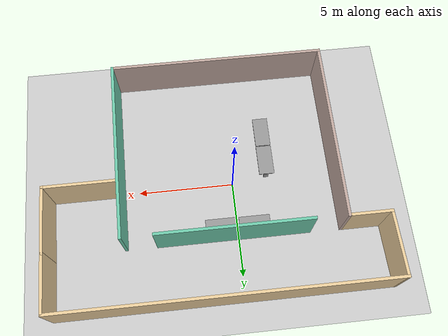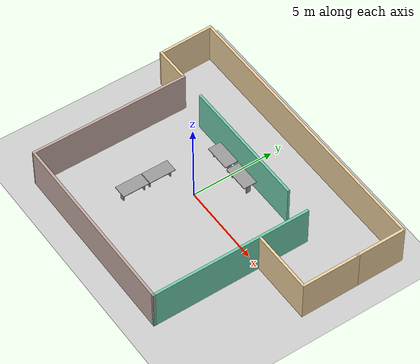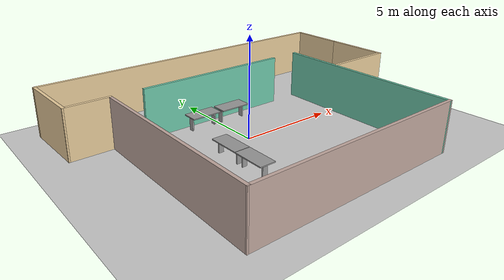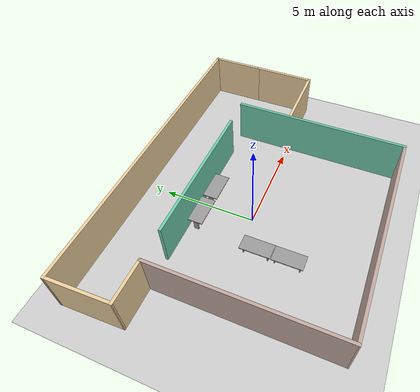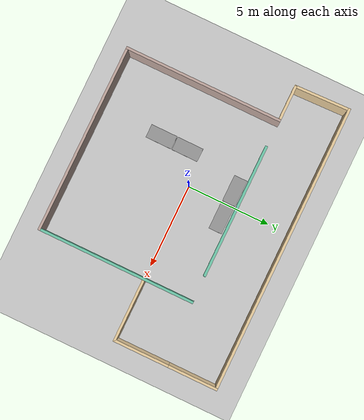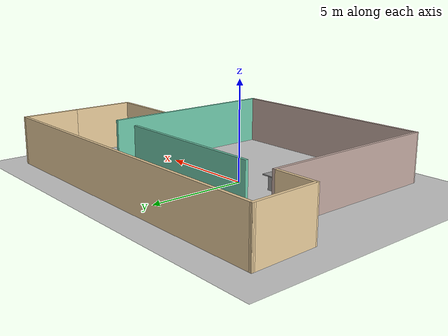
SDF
<sdf version="1.6">
 <world name="default">
  <model name="ground_plane">
   <static>1</static>
   <link name="link">
    <collision name="collision">
     <geometry><plane><normal>0 0 1</normal><size>100 100</size></plane></geometry>
     <surface><friction><ode><mu>100</mu><mu2>50</mu2></ode></friction></surface>
    </collision>
    <visual name="visual">
     <cast_shadows>0</cast_shadows>
     <geometry><plane><normal>0 0 1</normal><size>100 100</size></plane></geometry>
     <material>
      <script><uri>file://media/materials/scripts/gazebo.material</uri><name>Gazebo/Grey</name></script>
     </material>
    </visual>
   </link>
  </model>
  <model name="robot_lab">
   <pose>1.00449 -0.052687 0 0 -0 0</pose>
   <link name="Wall_10">
    <collision name="Wall_10_Collision">
     <geometry><box><size>8 0.15 2.5</size></box></geometry>
     <pose>0 0 1.25 0 -0 0</pose>
    </collision>
    <visual name="Wall_10_Visual">
     <pose>0 0 1.25 0 -0 0</pose>
     <geometry><box><size>8 0.15 2.5</size></box></geometry>
     <material>
      <script><uri>file://media/materials/scripts/gazebo.material</uri><name>Gazebo/Grey</name></script>
      <ambient>0.435294 0.796078 0.67451 1</ambient>
     </material>
    </visual>
    <pose>-0.751583 3.04123 0 0 -0 0</pose>
   </link>
   <link name="Wall_12">
    <collision name="Wall_12_Collision">
     <geometry><box><size>9.5 0.15 2.5</size></box></geometry>
     <pose>0 0 1.25 0 -0 0</pose>
    </collision>
    <visual name="Wall_12_Visual">
     <pose>0 0 1.25 0 -0 0</pose>
     <geometry><box><size>9.5 0.15 2.5</size></box></geometry>
     <material>
      <script><uri>file://media/materials/scripts/gazebo.material</uri><name>Gazebo/Grey</name></script>
      <ambient>0.760784 0.662745 0.627451 1</ambient>
     </material>
    </visual>
    <pose>-6.34573 -1.61098 0 0 0 -1.5708</pose>
   </link>
   <link name="Wall_15">
    <collision name="Wall_15_Collision">
     <geometry><box><size>9.5 0.15 2.5</size></box></geometry>
     <pose>0 0 1.25 0 -0 0</pose>
    </collision>
    <visual name="Wall_15_Visual">
     <pose>0 0 1.25 0 -0 0</pose>
     <geometry><box><size>9.5 0.15 2.5</size></box></geometry>
     <material>
      <script><uri>file://media/materials/scripts/gazebo.material</uri><name>Gazebo/Grey</name></script>
      <ambient>0.435294 0.796078 0.67451 1</ambient>
     </material>
    </visual>
    <pose>4.81922 -1.62974 0 0 0 -1.5708</pose>
   </link>
   <link name="Wall_17">
    <collision name="Wall_17_Collision">
     <geometry><box><size>11.315 0.15 2.5</size></box></geometry>
     <pose>0 0 1.25 0 -0 0</pose>
    </collision>
    <visual name="Wall_17_Visual">
     <pose>0 0 1.25 0 -0 0</pose>
     <geometry><box><size>11.315 0.15 2.5</size></box></geometry>
     <material>
      <script><uri>file://media/materials/scripts/gazebo.material</uri><name>Gazebo/Grey</name></script>
      <ambient>0.760784 0.662745 0.627451 1</ambient>
     </material>
    </visual>
    <pose>-0.763252 -6.29536 0 0 0 -0.00168</pose>
   </link>
   <link name="Wall_25">
    <collision name="Wall_25_Collision">
     <geometry><box><size>17.25 0.15 2.5</size></box></geometry>
     <pose>0 0 1.25 0 -0 0</pose>
    </collision>
    <visual name="Wall_25_Visual">
     <pose>0 0 1.25 0 -0 0</pose>
     <geometry><box><size>17.25 0.15 2.5</size></box></geometry>
     <material>
      <script><uri>file://media/materials/scripts/gazebo.material</uri><name>Gazebo/Grey</name></script>
      <ambient>0.921569 0.807843 0.615686 1</ambient>
     </material>
    </visual>
    <pose>0.001174 6.30252 0 0 -0 0</pose>
   </link>
   <link name="Wall_26">
    <collision name="Wall_26_Collision">
     <geometry><box><size>3 0.15 2.5</size></box></geometry>
     <pose>0 0 1.25 0 -0 0</pose>
    </collision>
    <visual name="Wall_26_Visual">
     <pose>0 0 1.25 0 -0 0</pose>
     <geometry><box><size>3 0.15 2.5</size></box></geometry>
     <material>
      <script><uri>file://media/materials/scripts/gazebo.material</uri><name>Gazebo/Grey</name></script>
      <ambient>0.921569 0.807843 0.615686 1</ambient>
     </material>
    </visual>
    <pose>8.55118 4.87752 0 0 0 -1.5708</pose>
   </link>
   <link name="Wall_28">
    <collision name="Wall_28_Collision">
     <geometry><box><size>2.25 0.15 2.5</size></box></geometry>
     <pose>0 0 1.25 0 -0 0</pose>
    </collision>
    <visual name="Wall_28_Visual">
     <pose>0 0 1.25 0 -0 0</pose>
     <geometry><box><size>2.25 0.15 2.5</size></box></geometry>
     <material>
      <script><uri>file://media/materials/scripts/gazebo.material</uri><name>Gazebo/Grey</name></script>
      <ambient>0.921569 0.807843 0.615686 1</ambient>
     </material>
    </visual>
    <pose>-7.39573 3.06402 0 0 -0 3.14159</pose>
   </link>
   <link name="Wall_32">
    <collision name="Wall_32_Collision">
     <geometry><box><size>3.39014 0.15 2.5</size></box></geometry>
     <pose>0 0 1.25 0 -0 0</pose>
    </collision>
    <visual name="Wall_32_Visual">
     <pose>0 0 1.25 0 -0 0</pose>
     <geometry><box><size>3.39014 0.15 2.5</size></box></geometry>
     <material>
      <script><uri>file://media/materials/scripts/gazebo.material</uri><name>Gazebo/Grey</name></script>
      <ambient>0.921569 0.807843 0.615686 1</ambient>
     </material>
    </visual>
    <pose>-8.49728 4.68327 0 0 0 -1.53897</pose>
   </link>
   <link name="Wall_34">
    <collision name="Wall_34_Collision">
     <geometry><box><size>3.5 0.15 2.5</size></box></geometry>
     <pose>0 0 1.25 0 -0 0</pose>
    </collision>
    <visual name="Wall_34_Visual">
     <pose>0 0 1.25 0 -0 0</pose>
     <geometry><box><size>3.5 0.15 2.5</size></box></geometry>
     <material>
      <script><uri>file://media/materials/scripts/gazebo.material</uri><name>Gazebo/Grey</name></script>
      <ambient>0.921569 0.807843 0.615686 1</ambient>
     </material>
    </visual>
    <pose>8.55118 1.77752 0 0 0 -1.5708</pose>
   </link>
   <link name="Wall_35">
    <collision name="Wall_35_Collision">
     <geometry><box><size>3.75 0.15 2.5</size></box></geometry>
     <pose>0 0 1.25 0 -0 0</pose>
    </collision>
    <visual name="Wall_35_Visual">
     <pose>0 0 1.25 0 -0 0</pose>
     <geometry><box><size>3.75 0.15 2.5</size></box></geometry>
     <material>
      <script><uri>file://media/materials/scripts/gazebo.material</uri><name>Gazebo/Grey</name></script>
      <ambient>0.921569 0.807843 0.615686 1</ambient>
     </material>
    </visual>
    <pose>6.75117 0.10252 0 0 -0 3.14159</pose>
   </link>
   <static>1</static>
  </model>
  <model name="table2_1_2_clone">
   <link name="link_0">
    <pose>0.065308 0.022644 0.260892 0 -0 0</pose>
    <inertial>
     <mass>0.0176486</mass>
     <inertia>
      <ixx>0.00156504</ixx>
      <ixy>0</ixy>
      <ixz>0</ixz>
      <iyy>0.00147786</iyy>
      <iyz>0</iyz>
      <izz>0.00010146</izz>
     </inertia>
    </inertial>
    <visual name="visual">
     <geometry><box><size>0.0697 0.253231 0.7</size></box></geometry>
     <material>
      <lighting>1</lighting>
      <script><uri>file://media/materials/scripts/gazebo.material</uri><name>Gazebo/Grey</name></script>
      <ambient>0.3 0.3 0.3 1</ambient>
      <diffuse>0.7 0.7 0.7 1</diffuse>
      <specular>0.01 0.01 0.01 1</specular>
      <emissive>0 0 0 1</emissive>
      <shader type="vertex"><normal_map>__default__</normal_map></shader>
     </material>
    </visual>
    <collision name="collision">
     <geometry><box><size>0.0697 0.253231 0.7</size></box></geometry>
     <surface>
      <friction>
       <ode><mu>1</mu><mu2>1</mu2><fdir1>0 0 0</fdir1><slip1>0</slip1><slip2>0</slip2></ode>
       <torsional>
        <coefficient>1</coefficient>
        <patch_radius>0</patch_radius>
        <surface_radius>0</surface_radius>
        <use_patch_radius>1</use_patch_radius>
        <ode><slip>0</slip></ode>
       </torsional>
      </friction>
      <bounce><restitution_coefficient>0</restitution_coefficient><threshold>1e+06</threshold></bounce>
      <contact>
       <collide_without_contact>0</collide_without_contact>
       <collide_without_contact_bitmask>1</collide_without_contact_bitmask>
       <collide_bitmask>1</collide_bitmask>
       <ode>
        <soft_cfm>0</soft_cfm>
        <soft_erp>0.2</soft_erp>
        <kp>1e+13</kp>
        <kd>1</kd>
        <max_vel>0.01</max_vel>
        <min_depth>0</min_depth>
       </ode>
       <bullet>
        <split_impulse>1</split_impulse>
        <split_impulse_penetration_threshold>-0.01</split_impulse_penetration_threshold>
        <soft_cfm>0</soft_cfm>
        <soft_erp>0.2</soft_erp>
        <kp>1e+13</kp>
        <kd>1</kd>
       </bullet>
      </contact>
     </surface>
    </collision>
   </link>
   <link name="link_0_clone">
    <pose>1.3547 0.013267 0.260893 0 -0 0</pose>
    <inertial>
     <mass>0.0176486</mass>
     <inertia>
      <ixx>0.00156504</ixx>
      <ixy>0</ixy>
      <ixz>0</ixz>
      <iyy>0.00147786</iyy>
      <iyz>0</iyz>
      <izz>0.00010146</izz>
     </inertia>
    </inertial>
    <visual name="visual">
     <geometry><box><size>0.0697 0.253231 0.7</size></box></geometry>
     <material>
      <lighting>1</lighting>
      <script><uri>file://media/materials/scripts/gazebo.material</uri><name>Gazebo/Grey</name></script>
      <ambient>0.3 0.3 0.3 1</ambient>
      <diffuse>0.7 0.7 0.7 1</diffuse>
      <specular>0.01 0.01 0.01 1</specular>
      <emissive>0 0 0 1</emissive>
      <shader type="vertex"><normal_map>__default__</normal_map></shader>
     </material>
    </visual>
    <collision name="collision">
     <geometry><box><size>0.0697 0.253231 0.7</size></box></geometry>
     <surface>
      <friction>
       <ode><mu>1</mu><mu2>1</mu2><fdir1>0 0 0</fdir1><slip1>0</slip1><slip2>0</slip2></ode>
       <torsional>
        <coefficient>1</coefficient>
        <patch_radius>0</patch_radius>
        <surface_radius>0</surface_radius>
        <use_patch_radius>1</use_patch_radius>
        <ode><slip>0</slip></ode>
       </torsional>
      </friction>
      <bounce><restitution_coefficient>0</restitution_coefficient><threshold>1e+06</threshold></bounce>
      <contact>
       <collide_without_contact>0</collide_without_contact>
       <collide_without_contact_bitmask>1</collide_without_contact_bitmask>
       <collide_bitmask>1</collide_bitmask>
       <ode>
        <soft_cfm>0</soft_cfm>
        <soft_erp>0.2</soft_erp>
        <kp>1e+13</kp>
        <kd>1</kd>
        <max_vel>0.01</max_vel>
        <min_depth>0</min_depth>
       </ode>
       <bullet>
        <split_impulse>1</split_impulse>
        <split_impulse_penetration_threshold>-0.01</split_impulse_penetration_threshold>
        <soft_cfm>0</soft_cfm>
        <soft_erp>0.2</soft_erp>
        <kp>1e+13</kp>
        <kd>1</kd>
       </bullet>
      </contact>
     </surface>
    </collision>
   </link>
   <link name="link_1">
    <pose>0.742636 0.022644 0.617468 0 -0 0</pose>
    <inertial>
     <mass>0.0666298</mass>
     <inertia>
      <ixx>0.00555983</ixx>
      <ixy>0</ixy>
      <ixz>0</ixz>
      <iyy>0.0186674</iyy>
      <iyz>0</iyz>
      <izz>0.0242125</izz>
     </inertia>
    </inertial>
    <visual name="visual">
     <geometry><box><size>1.6 0.8 0.050001</size></box></geometry>
     <material>
      <lighting>1</lighting>
      <script><uri>file://media/materials/scripts/gazebo.material</uri><name>Gazebo/Grey</name></script>
      <ambient>0.3 0.3 0.3 1</ambient>
      <diffuse>0.7 0.7 0.7 1</diffuse>
      <specular>0.01 0.01 0.01 1</specular>
      <emissive>0 0 0 1</emissive>
      <shader type="vertex"><normal_map>__default__</normal_map></shader>
     </material>
    </visual>
    <collision name="collision">
     <geometry><box><size>1.6 0.8 0.050001</size></box></geometry>
     <surface>
      <friction>
       <ode><mu>1000</mu><mu2>1000</mu2><fdir1>0 0 0</fdir1><slip1>0</slip1><slip2>0</slip2></ode>
       <torsional>
        <coefficient>1</coefficient>
        <patch_radius>0</patch_radius>
        <surface_radius>0</surface_radius>
        <use_patch_radius>1</use_patch_radius>
        <ode><slip>0</slip></ode>
       </torsional>
      </friction>
      <bounce><restitution_coefficient>0</restitution_coefficient><threshold>1e+06</threshold></bounce>
      <contact>
       <collide_without_contact>0</collide_without_contact>
       <collide_without_contact_bitmask>1</collide_without_contact_bitmask>
       <collide_bitmask>1</collide_bitmask>
       <ode>
        <soft_cfm>0</soft_cfm>
        <soft_erp>0.2</soft_erp>
        <kp>1e+13</kp>
        <kd>1</kd>
        <max_vel>0.01</max_vel>
        <min_depth>0</min_depth>
       </ode>
       <bullet>
        <split_impulse>1</split_impulse>
        <split_impulse_penetration_threshold>-0.01</split_impulse_penetration_threshold>
        <soft_cfm>0</soft_cfm>
        <soft_erp>0.2</soft_erp>
        <kp>1e+13</kp>
        <kd>1</kd>
       </bullet>
      </contact>
     </surface>
    </collision>
   </link>
   <joint name="link_0_JOINT_0" type="fixed">
    <parent>link_0</parent>
    <child>link_0_clone</child>
    <physics>
     <ode><limit><cfm>0</cfm><erp>0.2</erp></limit><suspension><cfm>0</cfm><erp>0.2</erp></suspension></ode>
    </physics>
   </joint>
   <joint name="link_1_JOINT_1" type="fixed">
    <parent>link_1</parent>
    <child>link_0</child>
    <physics>
     <ode><limit><cfm>0</cfm><erp>0.2</erp></limit><suspension><cfm>0</cfm><erp>0.2</erp></suspension></ode>
    </physics>
   </joint>
   <static>1</static>
   <pose>-1.60818 2.44012 0.099338 0 -0 0</pose>
  </model>
  <model name="table2_1_2_clone_0">
   <link name="link_0">
    <pose>0.065308 0.022644 0.260892 0 -0 0</pose>
    <inertial>
     <mass>0.0176486</mass>
     <inertia>
      <ixx>0.00156504</ixx>
      <ixy>0</ixy>
      <ixz>0</ixz>
      <iyy>0.00147786</iyy>
      <iyz>0</iyz>
      <izz>0.00010146</izz>
     </inertia>
    </inertial>
    <visual name="visual">
     <geometry><box><size>0.0697 0.253231 0.7</size></box></geometry>
     <material>
      <lighting>1</lighting>
      <script><uri>file://media/materials/scripts/gazebo.material</uri><name>Gazebo/Grey</name></script>
      <ambient>0.3 0.3 0.3 1</ambient>
      <diffuse>0.7 0.7 0.7 1</diffuse>
      <specular>0.01 0.01 0.01 1</specular>
      <emissive>0 0 0 1</emissive>
      <shader type="vertex"><normal_map>__default__</normal_map></shader>
     </material>
    </visual>
    <collision name="collision">
     <geometry><box><size>0.0697 0.253231 0.7</size></box></geometry>
     <surface>
      <friction>
       <ode><mu>1</mu><mu2>1</mu2><fdir1>0 0 0</fdir1><slip1>0</slip1><slip2>0</slip2></ode>
       <torsional>
        <coefficient>1</coefficient>
        <patch_radius>0</patch_radius>
        <surface_radius>0</surface_radius>
        <use_patch_radius>1</use_patch_radius>
        <ode><slip>0</slip></ode>
       </torsional>
      </friction>
      <bounce><restitution_coefficient>0</restitution_coefficient><threshold>1e+06</threshold></bounce>
      <contact>
       <collide_without_contact>0</collide_without_contact>
       <collide_without_contact_bitmask>1</collide_without_contact_bitmask>
       <collide_bitmask>1</collide_bitmask>
       <ode>
        <soft_cfm>0</soft_cfm>
        <soft_erp>0.2</soft_erp>
        <kp>1e+13</kp>
        <kd>1</kd>
        <max_vel>0.01</max_vel>
        <min_depth>0</min_depth>
       </ode>
       <bullet>
        <split_impulse>1</split_impulse>
        <split_impulse_penetration_threshold>-0.01</split_impulse_penetration_threshold>
        <soft_cfm>0</soft_cfm>
        <soft_erp>0.2</soft_erp>
        <kp>1e+13</kp>
        <kd>1</kd>
       </bullet>
      </contact>
     </surface>
    </collision>
   </link>
   <link name="link_0_clone">
    <pose>1.3547 0.013267 0.260893 0 -0 0</pose>
    <inertial>
     <mass>0.0176486</mass>
     <inertia>
      <ixx>0.00156504</ixx>
      <ixy>0</ixy>
      <ixz>0</ixz>
      <iyy>0.00147786</iyy>
      <iyz>0</iyz>
      <izz>0.00010146</izz>
     </inertia>
    </inertial>
    <visual name="visual">
     <geometry><box><size>0.0697 0.253231 0.7</size></box></geometry>
     <material>
      <lighting>1</lighting>
      <script><uri>file://media/materials/scripts/gazebo.material</uri><name>Gazebo/Grey</name></script>
      <ambient>0.3 0.3 0.3 1</ambient>
      <diffuse>0.7 0.7 0.7 1</diffuse>
      <specular>0.01 0.01 0.01 1</specular>
      <emissive>0 0 0 1</emissive>
      <shader type="vertex"><normal_map>__default__</normal_map></shader>
     </material>
    </visual>
    <collision name="collision">
     <geometry><box><size>0.0697 0.253231 0.7</size></box></geometry>
     <surface>
      <friction>
       <ode><mu>1</mu><mu2>1</mu2><fdir1>0 0 0</fdir1><slip1>0</slip1><slip2>0</slip2></ode>
       <torsional>
        <coefficient>1</coefficient>
        <patch_radius>0</patch_radius>
        <surface_radius>0</surface_radius>
        <use_patch_radius>1</use_patch_radius>
        <ode><slip>0</slip></ode>
       </torsional>
      </friction>
      <bounce><restitution_coefficient>0</restitution_coefficient><threshold>1e+06</threshold></bounce>
      <contact>
       <collide_without_contact>0</collide_without_contact>
       <collide_without_contact_bitmask>1</collide_without_contact_bitmask>
       <collide_bitmask>1</collide_bitmask>
       <ode>
        <soft_cfm>0</soft_cfm>
        <soft_erp>0.2</soft_erp>
        <kp>1e+13</kp>
        <kd>1</kd>
        <max_vel>0.01</max_vel>
        <min_depth>0</min_depth>
       </ode>
       <bullet>
        <split_impulse>1</split_impulse>
        <split_impulse_penetration_threshold>-0.01</split_impulse_penetration_threshold>
        <soft_cfm>0</soft_cfm>
        <soft_erp>0.2</soft_erp>
        <kp>1e+13</kp>
        <kd>1</kd>
       </bullet>
      </contact>
     </surface>
    </collision>
   </link>
   <link name="link_1">
    <pose>0.742636 0.022644 0.617468 0 -0 0</pose>
    <inertial>
     <mass>0.0666298</mass>
     <inertia>
      <ixx>0.00555983</ixx>
      <ixy>0</ixy>
      <ixz>0</ixz>
      <iyy>0.0186674</iyy>
      <iyz>0</iyz>
      <izz>0.0242125</izz>
     </inertia>
    </inertial>
    <visual name="visual">
     <geometry><box><size>1.6 0.8 0.050001</size></box></geometry>
     <material>
      <lighting>1</lighting>
      <script><uri>file://media/materials/scripts/gazebo.material</uri><name>Gazebo/Grey</name></script>
      <ambient>0.3 0.3 0.3 1</ambient>
      <diffuse>0.7 0.7 0.7 1</diffuse>
      <specular>0.01 0.01 0.01 1</specular>
      <emissive>0 0 0 1</emissive>
      <shader type="vertex"><normal_map>__default__</normal_map></shader>
     </material>
    </visual>
    <collision name="collision">
     <geometry><box><size>1.6 0.8 0.050001</size></box></geometry>
     <surface>
      <friction>
       <ode><mu>1000</mu><mu2>1000</mu2><fdir1>0 0 0</fdir1><slip1>0</slip1><slip2>0</slip2></ode>
       <torsional>
        <coefficient>1</coefficient>
        <patch_radius>0</patch_radius>
        <surface_radius>0</surface_radius>
        <use_patch_radius>1</use_patch_radius>
        <ode><slip>0</slip></ode>
       </torsional>
      </friction>
      <bounce><restitution_coefficient>0</restitution_coefficient><threshold>1e+06</threshold></bounce>
      <contact>
       <collide_without_contact>0</collide_without_contact>
       <collide_without_contact_bitmask>1</collide_without_contact_bitmask>
       <collide_bitmask>1</collide_bitmask>
       <ode>
        <soft_cfm>0</soft_cfm>
        <soft_erp>0.2</soft_erp>
        <kp>1e+13</kp>
        <kd>1</kd>
        <max_vel>0.01</max_vel>
        <min_depth>0</min_depth>
       </ode>
       <bullet>
        <split_impulse>1</split_impulse>
        <split_impulse_penetration_threshold>-0.01</split_impulse_penetration_threshold>
        <soft_cfm>0</soft_cfm>
        <soft_erp>0.2</soft_erp>
        <kp>1e+13</kp>
        <kd>1</kd>
       </bullet>
      </contact>
     </surface>
    </collision>
   </link>
   <joint name="link_0_JOINT_0" type="fixed">
    <parent>link_0</parent>
    <child>link_0_clone</child>
    <physics>
     <ode><limit><cfm>0</cfm><erp>0.2</erp></limit><suspension><cfm>0</cfm><erp>0.2</erp></suspension></ode>
    </physics>
   </joint>
   <joint name="link_1_JOINT_1" type="fixed">
    <parent>link_1</parent>
    <child>link_0</child>
    <physics>
     <ode><limit><cfm>0</cfm><erp>0.2</erp></limit><suspension><cfm>0</cfm><erp>0.2</erp></suspension></ode>
    </physics>
   </joint>
   <static>1</static>
   <pose>0.123693 2.41931 0.099338 0 -0 0</pose>
  </model>
  <model name="table2_1_2_clone_0_clone_0_clone_0_clone_0">
   <link name="link_0">
    <pose>0.065308 0.022644 0.260892 0 -0 0</pose>
    <inertial>
     <mass>0.0176486</mass>
     <inertia>
      <ixx>0.00156504</ixx>
      <ixy>0</ixy>
      <ixz>0</ixz>
      <iyy>0.00147786</iyy>
      <iyz>0</iyz>
      <izz>0.00010146</izz>
     </inertia>
    </inertial>
    <visual name="visual">
     <geometry><box><size>0.0697 0.253231 0.7</size></box></geometry>
     <material>
      <lighting>1</lighting>
      <script><uri>file://media/materials/scripts/gazebo.material</uri><name>Gazebo/Grey</name></script>
      <ambient>0.3 0.3 0.3 1</ambient>
      <diffuse>0.7 0.7 0.7 1</diffuse>
      <specular>0.01 0.01 0.01 1</specular>
      <emissive>0 0 0 1</emissive>
      <shader type="vertex"><normal_map>__default__</normal_map></shader>
     </material>
    </visual>
    <collision name="collision">
     <geometry><box><size>0.0697 0.253231 0.7</size></box></geometry>
     <surface>
      <friction>
       <ode><mu>1</mu><mu2>1</mu2><fdir1>0 0 0</fdir1><slip1>0</slip1><slip2>0</slip2></ode>
       <torsional>
        <coefficient>1</coefficient>
        <patch_radius>0</patch_radius>
        <surface_radius>0</surface_radius>
        <use_patch_radius>1</use_patch_radius>
        <ode><slip>0</slip></ode>
       </torsional>
      </friction>
      <bounce><restitution_coefficient>0</restitution_coefficient><threshold>1e+06</threshold></bounce>
      <contact>
       <collide_without_contact>0</collide_without_contact>
       <collide_without_contact_bitmask>1</collide_without_contact_bitmask>
       <collide_bitmask>1</collide_bitmask>
       <ode>
        <soft_cfm>0</soft_cfm>
        <soft_erp>0.2</soft_erp>
        <kp>1e+13</kp>
        <kd>1</kd>
        <max_vel>0.01</max_vel>
        <min_depth>0</min_depth>
       </ode>
       <bullet>
        <split_impulse>1</split_impulse>
        <split_impulse_penetration_threshold>-0.01</split_impulse_penetration_threshold>
        <soft_cfm>0</soft_cfm>
        <soft_erp>0.2</soft_erp>
        <kp>1e+13</kp>
        <kd>1</kd>
       </bullet>
      </contact>
     </surface>
    </collision>
   </link>
   <link name="link_0_clone">
    <pose>1.3547 0.013267 0.260893 0 -0 0</pose>
    <inertial>
     <mass>0.0176486</mass>
     <inertia>
      <ixx>0.00156504</ixx>
      <ixy>0</ixy>
      <ixz>0</ixz>
      <iyy>0.00147786</iyy>
      <iyz>0</iyz>
      <izz>0.00010146</izz>
     </inertia>
    </inertial>
    <visual name="visual">
     <geometry><box><size>0.0697 0.253231 0.7</size></box></geometry>
     <material>
      <lighting>1</lighting>
      <script><uri>file://media/materials/scripts/gazebo.material</uri><name>Gazebo/Grey</name></script>
      <ambient>0.3 0.3 0.3 1</ambient>
      <diffuse>0.7 0.7 0.7 1</diffuse>
      <specular>0.01 0.01 0.01 1</specular>
      <emissive>0 0 0 1</emissive>
      <shader type="vertex"><normal_map>__default__</normal_map></shader>
     </material>
    </visual>
    <collision name="collision">
     <geometry><box><size>0.0697 0.253231 0.7</size></box></geometry>
     <surface>
      <friction>
       <ode><mu>1</mu><mu2>1</mu2><fdir1>0 0 0</fdir1><slip1>0</slip1><slip2>0</slip2></ode>
       <torsional>
        <coefficient>1</coefficient>
        <patch_radius>0</patch_radius>
        <surface_radius>0</surface_radius>
        <use_patch_radius>1</use_patch_radius>
        <ode><slip>0</slip></ode>
       </torsional>
      </friction>
      <bounce><restitution_coefficient>0</restitution_coefficient><threshold>1e+06</threshold></bounce>
      <contact>
       <collide_without_contact>0</collide_without_contact>
       <collide_without_contact_bitmask>1</collide_without_contact_bitmask>
       <collide_bitmask>1</collide_bitmask>
       <ode>
        <soft_cfm>0</soft_cfm>
        <soft_erp>0.2</soft_erp>
        <kp>1e+13</kp>
        <kd>1</kd>
        <max_vel>0.01</max_vel>
        <min_depth>0</min_depth>
       </ode>
       <bullet>
        <split_impulse>1</split_impulse>
        <split_impulse_penetration_threshold>-0.01</split_impulse_penetration_threshold>
        <soft_cfm>0</soft_cfm>
        <soft_erp>0.2</soft_erp>
        <kp>1e+13</kp>
        <kd>1</kd>
       </bullet>
      </contact>
     </surface>
    </collision>
   </link>
   <link name="link_1">
    <pose>0.742636 0.022644 0.617468 0 -0 0</pose>
    <inertial>
     <mass>0.0666298</mass>
     <inertia>
      <ixx>0.00555983</ixx>
      <ixy>0</ixy>
      <ixz>0</ixz>
      <iyy>0.0186674</iyy>
      <iyz>0</iyz>
      <izz>0.0242125</izz>
     </inertia>
    </inertial>
    <visual name="visual">
     <geometry><box><size>1.6 0.8 0.050001</size></box></geometry>
     <material>
      <lighting>1</lighting>
      <script><uri>file://media/materials/scripts/gazebo.material</uri><name>Gazebo/Grey</name></script>
      <ambient>0.3 0.3 0.3 1</ambient>
      <diffuse>0.7 0.7 0.7 1</diffuse>
      <specular>0.01 0.01 0.01 1</specular>
      <emissive>0 0 0 1</emissive>
      <shader type="vertex"><normal_map>__default__</normal_map></shader>
     </material>
    </visual>
    <collision name="collision">
     <geometry><box><size>1.6 0.8 0.050001</size></box></geometry>
     <surface>
      <friction>
       <ode><mu>1000</mu><mu2>1000</mu2><fdir1>0 0 0</fdir1><slip1>0</slip1><slip2>0</slip2></ode>
       <torsional>
        <coefficient>1</coefficient>
        <patch_radius>0</patch_radius>
        <surface_radius>0</surface_radius>
        <use_patch_radius>1</use_patch_radius>
        <ode><slip>0</slip></ode>
       </torsional>
      </friction>
      <bounce><restitution_coefficient>0</restitution_coefficient><threshold>1e+06</threshold></bounce>
      <contact>
       <collide_without_contact>0</collide_without_contact>
       <collide_without_contact_bitmask>1</collide_without_contact_bitmask>
       <collide_bitmask>1</collide_bitmask>
       <ode>
        <soft_cfm>0</soft_cfm>
        <soft_erp>0.2</soft_erp>
        <kp>1e+13</kp>
        <kd>1</kd>
        <max_vel>0.01</max_vel>
        <min_depth>0</min_depth>
       </ode>
       <bullet>
        <split_impulse>1</split_impulse>
        <split_impulse_penetration_threshold>-0.01</split_impulse_penetration_threshold>
        <soft_cfm>0</soft_cfm>
        <soft_erp>0.2</soft_erp>
        <kp>1e+13</kp>
        <kd>1</kd>
       </bullet>
      </contact>
     </surface>
    </collision>
   </link>
   <joint name="link_0_JOINT_0" type="fixed">
    <parent>link_0</parent>
    <child>link_0_clone</child>
    <physics>
     <ode><limit><cfm>0</cfm><erp>0.2</erp></limit><suspension><cfm>0</cfm><erp>0.2</erp></suspension></ode>
    </physics>
   </joint>
   <joint name="link_1_JOINT_1" type="fixed">
    <parent>link_1</parent>
    <child>link_0</child>
    <physics>
     <ode><limit><cfm>0</cfm><erp>0.2</erp></limit><suspension><cfm>0</cfm><erp>0.2</erp></suspension></ode>
    </physics>
   </joint>
   <static>1</static>
   <pose>-1.86025 -0.230832 0.099338 0 0 -1.57221</pose>
  </model>
  <model name="table2_1_2_clone_0_clone_0_clone_0_clone_0_clone">
   <link name="link_0">
    <pose>0.065308 0.022644 0.260892 0 -0 0</pose>
    <inertial>
     <mass>0.0176486</mass>
     <inertia>
      <ixx>0.00156504</ixx>
      <ixy>0</ixy>
      <ixz>0</ixz>
      <iyy>0.00147786</iyy>
      <iyz>0</iyz>
      <izz>0.00010146</izz>
     </inertia>
    </inertial>
    <visual name="visual">
     <geometry><box><size>0.0697 0.253231 0.7</size></box></geometry>
     <material>
      <lighting>1</lighting>
      <script><uri>file://media/materials/scripts/gazebo.material</uri><name>Gazebo/Grey</name></script>
      <ambient>0.3 0.3 0.3 1</ambient>
      <diffuse>0.7 0.7 0.7 1</diffuse>
      <specular>0.01 0.01 0.01 1</specular>
      <emissive>0 0 0 1</emissive>
      <shader type="vertex"><normal_map>__default__</normal_map></shader>
     </material>
    </visual>
    <collision name="collision">
     <geometry><box><size>0.0697 0.253231 0.7</size></box></geometry>
     <surface>
      <friction>
       <ode><mu>1</mu><mu2>1</mu2><fdir1>0 0 0</fdir1><slip1>0</slip1><slip2>0</slip2></ode>
       <torsional>
        <coefficient>1</coefficient>
        <patch_radius>0</patch_radius>
        <surface_radius>0</surface_radius>
        <use_patch_radius>1</use_patch_radius>
        <ode><slip>0</slip></ode>
       </torsional>
      </friction>
      <bounce><restitution_coefficient>0</restitution_coefficient><threshold>1e+06</threshold></bounce>
      <contact>
       <collide_without_contact>0</collide_without_contact>
       <collide_without_contact_bitmask>1</collide_without_contact_bitmask>
       <collide_bitmask>1</collide_bitmask>
       <ode>
        <soft_cfm>0</soft_cfm>
        <soft_erp>0.2</soft_erp>
        <kp>1e+13</kp>
        <kd>1</kd>
        <max_vel>0.01</max_vel>
        <min_depth>0</min_depth>
       </ode>
       <bullet>
        <split_impulse>1</split_impulse>
        <split_impulse_penetration_threshold>-0.01</split_impulse_penetration_threshold>
        <soft_cfm>0</soft_cfm>
        <soft_erp>0.2</soft_erp>
        <kp>1e+13</kp>
        <kd>1</kd>
       </bullet>
      </contact>
     </surface>
    </collision>
   </link>
   <link name="link_0_clone">
    <pose>1.3547 0.013267 0.260893 0 -0 0</pose>
    <inertial>
     <mass>0.0176486</mass>
     <inertia>
      <ixx>0.00156504</ixx>
      <ixy>0</ixy>
      <ixz>0</ixz>
      <iyy>0.00147786</iyy>
      <iyz>0</iyz>
      <izz>0.00010146</izz>
     </inertia>
    </inertial>
    <visual name="visual">
     <geometry><box><size>0.0697 0.253231 0.7</size></box></geometry>
     <material>
      <lighting>1</lighting>
      <script><uri>file://media/materials/scripts/gazebo.material</uri><name>Gazebo/Grey</name></script>
      <ambient>0.3 0.3 0.3 1</ambient>
      <diffuse>0.7 0.7 0.7 1</diffuse>
      <specular>0.01 0.01 0.01 1</specular>
      <emissive>0 0 0 1</emissive>
      <shader type="vertex"><normal_map>__default__</normal_map></shader>
     </material>
    </visual>
    <collision name="collision">
     <geometry><box><size>0.0697 0.253231 0.7</size></box></geometry>
     <surface>
      <friction>
       <ode><mu>1</mu><mu2>1</mu2><fdir1>0 0 0</fdir1><slip1>0</slip1><slip2>0</slip2></ode>
       <torsional>
        <coefficient>1</coefficient>
        <patch_radius>0</patch_radius>
        <surface_radius>0</surface_radius>
        <use_patch_radius>1</use_patch_radius>
        <ode><slip>0</slip></ode>
       </torsional>
      </friction>
      <bounce><restitution_coefficient>0</restitution_coefficient><threshold>1e+06</threshold></bounce>
      <contact>
       <collide_without_contact>0</collide_without_contact>
       <collide_without_contact_bitmask>1</collide_without_contact_bitmask>
       <collide_bitmask>1</collide_bitmask>
       <ode>
        <soft_cfm>0</soft_cfm>
        <soft_erp>0.2</soft_erp>
        <kp>1e+13</kp>
        <kd>1</kd>
        <max_vel>0.01</max_vel>
        <min_depth>0</min_depth>
       </ode>
       <bullet>
        <split_impulse>1</split_impulse>
        <split_impulse_penetration_threshold>-0.01</split_impulse_penetration_threshold>
        <soft_cfm>0</soft_cfm>
        <soft_erp>0.2</soft_erp>
        <kp>1e+13</kp>
        <kd>1</kd>
       </bullet>
      </contact>
     </surface>
    </collision>
   </link>
   <link name="link_1">
    <pose>0.742636 0.022644 0.617468 0 -0 0</pose>
    <inertial>
     <mass>0.0666298</mass>
     <inertia>
      <ixx>0.00555983</ixx>
      <ixy>0</ixy>
      <ixz>0</ixz>
      <iyy>0.0186674</iyy>
      <iyz>0</iyz>
      <izz>0.0242125</izz>
     </inertia>
    </inertial>
    <visual name="visual">
     <geometry><box><size>1.6 0.8 0.050001</size></box></geometry>
     <material>
      <lighting>1</lighting>
      <script><uri>file://media/materials/scripts/gazebo.material</uri><name>Gazebo/Grey</name></script>
      <ambient>0.3 0.3 0.3 1</ambient>
      <diffuse>0.7 0.7 0.7 1</diffuse>
      <specular>0.01 0.01 0.01 1</specular>
      <emissive>0 0 0 1</emissive>
      <shader type="vertex"><normal_map>__default__</normal_map></shader>
     </material>
    </visual>
    <collision name="collision">
     <geometry><box><size>1.6 0.8 0.050001</size></box></geometry>
     <surface>
      <friction>
       <ode><mu>1000</mu><mu2>1000</mu2><fdir1>0 0 0</fdir1><slip1>0</slip1><slip2>0</slip2></ode>
       <torsional>
        <coefficient>1</coefficient>
        <patch_radius>0</patch_radius>
        <surface_radius>0</surface_radius>
        <use_patch_radius>1</use_patch_radius>
        <ode><slip>0</slip></ode>
       </torsional>
      </friction>
      <bounce><restitution_coefficient>0</restitution_coefficient><threshold>1e+06</threshold></bounce>
      <contact>
       <collide_without_contact>0</collide_without_contact>
       <collide_without_contact_bitmask>1</collide_without_contact_bitmask>
       <collide_bitmask>1</collide_bitmask>
       <ode>
        <soft_cfm>0</soft_cfm>
        <soft_erp>0.2</soft_erp>
        <kp>1e+13</kp>
        <kd>1</kd>
        <max_vel>0.01</max_vel>
        <min_depth>0</min_depth>
       </ode>
       <bullet>
        <split_impulse>1</split_impulse>
        <split_impulse_penetration_threshold>-0.01</split_impulse_penetration_threshold>
        <soft_cfm>0</soft_cfm>
        <soft_erp>0.2</soft_erp>
        <kp>1e+13</kp>
        <kd>1</kd>
       </bullet>
      </contact>
     </surface>
    </collision>
   </link>
   <joint name="link_0_JOINT_0" type="fixed">
    <parent>link_0</parent>
    <child>link_0_clone</child>
    <physics>
     <ode><limit><cfm>0</cfm><erp>0.2</erp></limit><suspension><cfm>0</cfm><erp>0.2</erp></suspension></ode>
    </physics>
   </joint>
   <joint name="link_1_JOINT_1" type="fixed">
    <parent>link_1</parent>
    <child>link_0</child>
    <physics>
     <ode><limit><cfm>0</cfm><erp>0.2</erp></limit><suspension><cfm>0</cfm><erp>0.2</erp></suspension></ode>
    </physics>
   </joint>
   <static>1</static>
   <pose>-1.8675 -1.8686 0.099338 0 0 -1.57221</pose>
  </model>
 </world>
</sdf>
